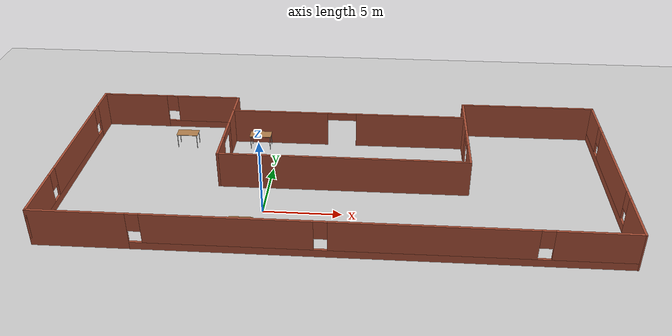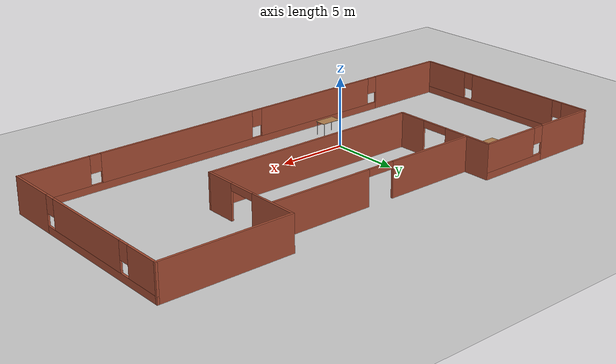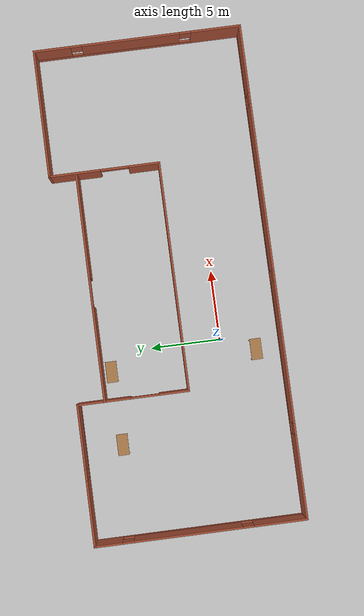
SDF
<sdf version="1.6">
 <world name="default">
  <light name="sun" type="directional">
   <pose>0 0 10 0 -0 0</pose>
   <diffuse>0.8 0.8 0.8 1</diffuse>
   <specular>0.2 0.2 0.2 1</specular>
   <attenuation>
    <range>1000</range>
    <constant>0.9</constant>
    <linear>0.01</linear>
    <quadratic>0.001</quadratic>
   </attenuation>
   <direction>-0.5 0.1 -0.9</direction>
  </light>
  <model name="ground_plane">
   <static>1</static>
   <link name="link">
    <collision name="collision">
     <geometry><plane><normal>0 0 1</normal><size>100 100</size></plane></geometry>
     <surface>
      <contact><collide_bitmask>65535</collide_bitmask></contact>
      <friction><ode><mu>100</mu><mu2>50</mu2></ode></friction>
     </surface>
    </collision>
    <visual name="visual">
     <cast_shadows>0</cast_shadows>
     <geometry><plane><normal>0 0 1</normal><size>100 100</size></plane></geometry>
     <material>
      <script><uri>file://media/materials/scripts/gazebo.material</uri><name>Gazebo/Grey</name></script>
     </material>
    </visual>
   </link>
  </model>
  <gravity>0 0 -9.8</gravity>
  <magnetic_field>6e-06 2.3e-05 -4.2e-05</magnetic_field>
  <atmosphere type="adiabatic"/>
  <physics name="default_physics" default="0" type="ode">
   <max_step_size>0.001</max_step_size>
   <real_time_factor>1</real_time_factor>
   <real_time_update_rate>1000</real_time_update_rate>
  </physics>
  <scene><ambient>0.4 0.4 0.4 1</ambient><background>0.7 0.7 0.7 1</background><shadows>1</shadows></scene>
  <audio><device>default</device></audio>
  <spherical_coordinates>
   <surface_model>EARTH_WGS84</surface_model>
   <latitude_deg>0</latitude_deg>
   <longitude_deg>0</longitude_deg>
   <elevation>0</elevation>
   <heading_deg>0</heading_deg>
  </spherical_coordinates>
  <model name="modbot_world">
   <pose>4.48637 3.18277 0 0 -0 0</pose>
   <link name="Wall_10">
    <collision name="Wall_10_Collision">
     <geometry><box><size>9.25 0.15 2.5</size></box></geometry>
     <pose>0 0 1.25 0 -0 0</pose>
    </collision>
    <visual name="Wall_10_Visual">
     <pose>0 0 1.25 0 -0 0</pose>
     <geometry><box><size>9.25 0.15 2.5</size></box></geometry>
     <material>
      <script><uri>file://media/materials/scripts/gazebo.material</uri><name>Gazebo/Bricks</name></script>
      <ambient>0.560784 0.34902 0.00784314 1</ambient>
     </material>
     <meta><layer>0</layer></meta>
    </visual>
    <pose>13.05 7.425 0 0 -0 3.14159</pose>
   </link>
   <link name="Wall_11">
    <pose>8.5 3.5 0 0 -0 -1.5708</pose>
    <visual name="Wall_11_Visual_0">
     <pose>-2.13406 0 1.25 0 -0 0</pose>
     <geometry><box><size>3.73188 0.15 2.5</size></box></geometry>
     <material>
      <script><uri>file://media/materials/scripts/gazebo.material</uri><name>Gazebo/Bricks</name></script>
      <ambient>0.643137 0 0 1</ambient>
     </material>
     <meta><layer>0</layer></meta>
    </visual>
    <collision name="Wall_11_Collision_0">
     <geometry><box><size>3.73188 0.15 2.5</size></box></geometry>
     <pose>-2.13406 0 1.25 0 -0 0</pose>
    </collision>
    <visual name="Wall_11_Visual_1">
     <pose>2.86594 0 1.25 0 -0 0</pose>
     <geometry><box><size>2.26812 0.15 2.5</size></box></geometry>
     <material>
      <script><uri>file://media/materials/scripts/gazebo.material</uri><name>Gazebo/Bricks</name></script>
      <ambient>0.643137 0 0 1</ambient>
     </material>
     <meta><layer>0</layer></meta>
    </visual>
    <collision name="Wall_11_Collision_1">
     <geometry><box><size>2.26812 0.15 2.5</size></box></geometry>
     <pose>2.86594 0 1.25 0 -0 0</pose>
    </collision>
    <visual name="Wall_11_Visual_2">
     <pose>0.731881 0 2.25 0 -0 0</pose>
     <geometry><box><size>2 0.15 0.5</size></box></geometry>
     <material>
      <script><uri>file://media/materials/scripts/gazebo.material</uri><name>Gazebo/Bricks</name></script>
      <ambient>0.643137 0 0 1</ambient>
     </material>
     <meta><layer>0</layer></meta>
    </visual>
    <collision name="Wall_11_Collision_2">
     <geometry><box><size>2 0.15 0.5</size></box></geometry>
     <pose>0.731881 0 2.25 0 -0 0</pose>
    </collision>
   </link>
   <link name="Wall_12">
    <collision name="Wall_12_Collision">
     <geometry><box><size>16.25 0.15 2.5</size></box></geometry>
     <pose>0 0 1.25 0 -0 0</pose>
    </collision>
    <visual name="Wall_12_Visual">
     <pose>0 0 1.25 0 -0 0</pose>
     <geometry><box><size>16.25 0.15 2.5</size></box></geometry>
     <material>
      <script><uri>file://media/materials/scripts/gazebo.material</uri><name>Gazebo/Bricks</name></script>
      <ambient>0.643137 0 0 1</ambient>
     </material>
     <meta><layer>0</layer></meta>
    </visual>
    <pose>0.449998 -0.425 0 0 -0 3.14159</pose>
   </link>
   <link name="Wall_15">
    <pose>-7.75 3.5 0 0 -0 -1.5708</pose>
    <visual name="Wall_15_Visual_0">
     <pose>-2.09194 0 1.25 0 -0 0</pose>
     <geometry><box><size>3.81611 0.15 2.5</size></box></geometry>
     <material>
      <script><uri>file://media/materials/scripts/gazebo.material</uri><name>Gazebo/Bricks</name></script>
      <ambient>0.643137 0 0 1</ambient>
     </material>
     <meta><layer>0</layer></meta>
    </visual>
    <collision name="Wall_15_Collision_0">
     <geometry><box><size>3.81611 0.15 2.5</size></box></geometry>
     <pose>-2.09194 0 1.25 0 -0 0</pose>
    </collision>
    <visual name="Wall_15_Visual_1">
     <pose>2.90806 0 1.25 0 -0 0</pose>
     <geometry><box><size>2.18389 0.15 2.5</size></box></geometry>
     <material>
      <script><uri>file://media/materials/scripts/gazebo.material</uri><name>Gazebo/Bricks</name></script>
      <ambient>0.643137 0 0 1</ambient>
     </material>
     <meta><layer>0</layer></meta>
    </visual>
    <collision name="Wall_15_Collision_1">
     <geometry><box><size>2.18389 0.15 2.5</size></box></geometry>
     <pose>2.90806 0 1.25 0 -0 0</pose>
    </collision>
    <visual name="Wall_15_Visual_2">
     <pose>0.816113 0 2.25 0 -0 0</pose>
     <geometry><box><size>2 0.15 0.5</size></box></geometry>
     <material>
      <script><uri>file://media/materials/scripts/gazebo.material</uri><name>Gazebo/Bricks</name></script>
      <ambient>0.643137 0 0 1</ambient>
     </material>
     <meta><layer>0</layer></meta>
    </visual>
    <collision name="Wall_15_Collision_2">
     <geometry><box><size>2 0.15 0.5</size></box></geometry>
     <pose>0.816113 0 2.25 0 -0 0</pose>
    </collision>
   </link>
   <link name="Wall_17">
    <pose>0.296212 5.51215 0 0 -0 0</pose>
    <visual name="Wall_17_Visual_0">
     <pose>-4.73722 0 1.25 0 -0 0</pose>
     <geometry><box><size>6.77557 0.15 2.5</size></box></geometry>
     <material>
      <script><uri>file://media/materials/scripts/gazebo.material</uri><name>Gazebo/Bricks</name></script>
      <ambient>0.643137 0 0 1</ambient>
     </material>
     <meta><layer>0</layer></meta>
    </visual>
    <collision name="Wall_17_Collision_0">
     <geometry><box><size>6.77557 0.15 2.5</size></box></geometry>
     <pose>-4.73722 0 1.25 0 -0 0</pose>
    </collision>
    <visual name="Wall_17_Visual_1">
     <pose>4.38778 0 1.25 0 -0 0</pose>
     <geometry><box><size>7.47443 0.15 2.5</size></box></geometry>
     <material>
      <script><uri>file://media/materials/scripts/gazebo.material</uri><name>Gazebo/Bricks</name></script>
      <ambient>0.643137 0 0 1</ambient>
     </material>
     <meta><layer>0</layer></meta>
    </visual>
    <collision name="Wall_17_Collision_1">
     <geometry><box><size>7.47443 0.15 2.5</size></box></geometry>
     <pose>4.38778 0 1.25 0 -0 0</pose>
    </collision>
    <visual name="Wall_17_Visual_2">
     <pose>-0.349432 0 2.25 0 -0 0</pose>
     <geometry><box><size>2 0.15 0.5</size></box></geometry>
     <material>
      <script><uri>file://media/materials/scripts/gazebo.material</uri><name>Gazebo/Bricks</name></script>
      <ambient>0.643137 0 0 1</ambient>
     </material>
     <meta><layer>0</layer></meta>
    </visual>
    <collision name="Wall_17_Collision_2">
     <geometry><box><size>2 0.15 0.5</size></box></geometry>
     <pose>-0.349432 0 2.25 0 -0 0</pose>
    </collision>
   </link>
   <link name="Wall_19">
    <pose>-0.050002 -7.425 0 0 -0 0</pose>
    <visual name="Wall_19_Visual_0">
     <pose>-14.6567 0 1.25 0 -0 0</pose>
     <geometry><box><size>5.93655 0.15 2.5</size></box></geometry>
     <material>
      <script><uri>file://media/materials/scripts/gazebo.material</uri><name>Gazebo/Bricks</name></script>
      <ambient>0.560784 0.34902 0.00784314 1</ambient>
     </material>
     <meta><layer>0</layer></meta>
    </visual>
    <collision name="Wall_19_Collision_0">
     <geometry><box><size>5.93655 0.15 2.5</size></box></geometry>
     <pose>-14.6567 0 1.25 0 -0 0</pose>
    </collision>
    <visual name="Wall_19_Visual_1">
     <pose>2.96827 0 0.25 0 -0 0</pose>
     <geometry><box><size>29.3135 0.15 0.5</size></box></geometry>
     <material>
      <script><uri>file://media/materials/scripts/gazebo.material</uri><name>Gazebo/Bricks</name></script>
      <ambient>0.560784 0.34902 0.00784314 1</ambient>
     </material>
     <meta><layer>0</layer></meta>
    </visual>
    <collision name="Wall_19_Collision_1">
     <geometry><box><size>29.3135 0.15 0.5</size></box></geometry>
     <pose>2.96827 0 0.25 0 -0 0</pose>
    </collision>
    <visual name="Wall_19_Visual_2">
     <pose>-5.85795 0 1.5 0 -0 0</pose>
     <geometry><box><size>10.061 0.15 2</size></box></geometry>
     <material>
      <script><uri>file://media/materials/scripts/gazebo.material</uri><name>Gazebo/Bricks</name></script>
      <ambient>0.560784 0.34902 0.00784314 1</ambient>
     </material>
     <meta><layer>0</layer></meta>
    </visual>
    <collision name="Wall_19_Collision_2">
     <geometry><box><size>10.061 0.15 2</size></box></geometry>
     <pose>-5.85795 0 1.5 0 -0 0</pose>
    </collision>
    <visual name="Wall_19_Visual_3">
     <pose>5.9661 0 1.5 0 -0 0</pose>
     <geometry><box><size>11.9871 0.15 2</size></box></geometry>
     <material>
      <script><uri>file://media/materials/scripts/gazebo.material</uri><name>Gazebo/Bricks</name></script>
      <ambient>0.560784 0.34902 0.00784314 1</ambient>
     </material>
     <meta><layer>0</layer></meta>
    </visual>
    <collision name="Wall_19_Collision_3">
     <geometry><box><size>11.9871 0.15 2</size></box></geometry>
     <pose>5.9661 0 1.5 0 -0 0</pose>
    </collision>
    <visual name="Wall_19_Visual_4">
     <pose>15.1923 0 1.5 0 -0 0</pose>
     <geometry><box><size>4.86535 0.15 2</size></box></geometry>
     <material>
      <script><uri>file://media/materials/scripts/gazebo.material</uri><name>Gazebo/Bricks</name></script>
      <ambient>0.560784 0.34902 0.00784314 1</ambient>
     </material>
     <meta><layer>0</layer></meta>
    </visual>
    <collision name="Wall_19_Collision_4">
     <geometry><box><size>4.86535 0.15 2</size></box></geometry>
     <pose>15.1923 0 1.5 0 -0 0</pose>
    </collision>
    <visual name="Wall_19_Visual_5">
     <pose>-11.2885 0 1.9 0 -0 0</pose>
     <geometry><box><size>0.8 0.15 1.2</size></box></geometry>
     <material>
      <script><uri>file://media/materials/scripts/gazebo.material</uri><name>Gazebo/Bricks</name></script>
      <ambient>0.560784 0.34902 0.00784314 1</ambient>
     </material>
     <meta><layer>0</layer></meta>
    </visual>
    <collision name="Wall_19_Collision_5">
     <geometry><box><size>0.8 0.15 1.2</size></box></geometry>
     <pose>-11.2885 0 1.9 0 -0 0</pose>
    </collision>
    <visual name="Wall_19_Visual_6">
     <pose>-0.427446 0 1.9 0 -0 0</pose>
     <geometry><box><size>0.8 0.15 1.2</size></box></geometry>
     <material>
      <script><uri>file://media/materials/scripts/gazebo.material</uri><name>Gazebo/Bricks</name></script>
      <ambient>0.560784 0.34902 0.00784314 1</ambient>
     </material>
     <meta><layer>0</layer></meta>
    </visual>
    <collision name="Wall_19_Collision_6">
     <geometry><box><size>0.8 0.15 1.2</size></box></geometry>
     <pose>-0.427446 0 1.9 0 -0 0</pose>
    </collision>
    <visual name="Wall_19_Visual_7">
     <pose>12.3597 0 1.9 0 -0 0</pose>
     <geometry><box><size>0.8 0.15 1.2</size></box></geometry>
     <material>
      <script><uri>file://media/materials/scripts/gazebo.material</uri><name>Gazebo/Bricks</name></script>
      <ambient>0.560784 0.34902 0.00784314 1</ambient>
     </material>
     <meta><layer>0</layer></meta>
    </visual>
    <collision name="Wall_19_Collision_7">
     <geometry><box><size>0.8 0.15 1.2</size></box></geometry>
     <pose>12.3597 0 1.9 0 -0 0</pose>
    </collision>
   </link>
   <link name="Wall_3">
    <pose>-17.6 0 0 0 -0 -1.5708</pose>
    <visual name="Wall_3_Visual_0">
     <pose>-6.49207 0 1.25 0 -0 0</pose>
     <geometry><box><size>2.01587 0.15 2.5</size></box></geometry>
     <material>
      <script><uri>file://media/materials/scripts/gazebo.material</uri><name>Gazebo/Bricks</name></script>
      <ambient>0.560784 0.34902 0.00784314 1</ambient>
     </material>
     <meta><layer>0</layer></meta>
    </visual>
    <collision name="Wall_3_Collision_0">
     <geometry><box><size>2.01587 0.15 2.5</size></box></geometry>
     <pose>-6.49207 0 1.25 0 -0 0</pose>
    </collision>
    <visual name="Wall_3_Visual_1">
     <pose>1.00794 0 0.25 0 -0 0</pose>
     <geometry><box><size>12.9841 0.15 0.5</size></box></geometry>
     <material>
      <script><uri>file://media/materials/scripts/gazebo.material</uri><name>Gazebo/Bricks</name></script>
      <ambient>0.560784 0.34902 0.00784314 1</ambient>
     </material>
     <meta><layer>0</layer></meta>
    </visual>
    <collision name="Wall_3_Collision_1">
     <geometry><box><size>12.9841 0.15 0.5</size></box></geometry>
     <pose>1.00794 0 0.25 0 -0 0</pose>
    </collision>
    <visual name="Wall_3_Visual_2">
     <pose>-0.884183 0 1.5 0 -0 0</pose>
     <geometry><box><size>7.59989 0.15 2</size></box></geometry>
     <material>
      <script><uri>file://media/materials/scripts/gazebo.material</uri><name>Gazebo/Bricks</name></script>
      <ambient>0.560784 0.34902 0.00784314 1</ambient>
     </material>
     <meta><layer>0</layer></meta>
    </visual>
    <collision name="Wall_3_Collision_2">
     <geometry><box><size>7.59989 0.15 2</size></box></geometry>
     <pose>-0.884183 0 1.5 0 -0 0</pose>
    </collision>
    <visual name="Wall_3_Visual_3">
     <pose>5.60788 0 1.5 0 -0 0</pose>
     <geometry><box><size>3.78424 0.15 2</size></box></geometry>
     <material>
      <script><uri>file://media/materials/scripts/gazebo.material</uri><name>Gazebo/Bricks</name></script>
      <ambient>0.560784 0.34902 0.00784314 1</ambient>
     </material>
     <meta><layer>0</layer></meta>
    </visual>
    <collision name="Wall_3_Collision_3">
     <geometry><box><size>3.78424 0.15 2</size></box></geometry>
     <pose>5.60788 0 1.5 0 -0 0</pose>
    </collision>
    <visual name="Wall_3_Visual_4">
     <pose>-5.08413 0 1.9 0 -0 0</pose>
     <geometry><box><size>0.8 0.15 1.2</size></box></geometry>
     <material>
      <script><uri>file://media/materials/scripts/gazebo.material</uri><name>Gazebo/Bricks</name></script>
      <ambient>0.560784 0.34902 0.00784314 1</ambient>
     </material>
     <meta><layer>0</layer></meta>
    </visual>
    <collision name="Wall_3_Collision_4">
     <geometry><box><size>0.8 0.15 1.2</size></box></geometry>
     <pose>-5.08413 0 1.9 0 -0 0</pose>
    </collision>
    <visual name="Wall_3_Visual_5">
     <pose>3.31576 0 1.9 0 -0 0</pose>
     <geometry><box><size>0.8 0.15 1.2</size></box></geometry>
     <material>
      <script><uri>file://media/materials/scripts/gazebo.material</uri><name>Gazebo/Bricks</name></script>
      <ambient>0.560784 0.34902 0.00784314 1</ambient>
     </material>
     <meta><layer>0</layer></meta>
    </visual>
    <collision name="Wall_3_Collision_5">
     <geometry><box><size>0.8 0.15 1.2</size></box></geometry>
     <pose>3.31576 0 1.9 0 -0 0</pose>
    </collision>
   </link>
   <link name="Wall_5">
    <pose>-12.675 7.425 0 0 -0 0</pose>
    <visual name="Wall_5_Visual_0">
     <pose>-2.67376 0 1.25 0 -0 0</pose>
     <geometry><box><size>4.65249 0.15 2.5</size></box></geometry>
     <material>
      <script><uri>file://media/materials/scripts/gazebo.material</uri><name>Gazebo/Bricks</name></script>
      <ambient>0.560784 0.34902 0.00784314 1</ambient>
     </material>
     <meta><layer>0</layer></meta>
    </visual>
    <collision name="Wall_5_Collision_0">
     <geometry><box><size>4.65249 0.15 2.5</size></box></geometry>
     <pose>-2.67376 0 1.25 0 -0 0</pose>
    </collision>
    <visual name="Wall_5_Visual_1">
     <pose>2.32624 0 0.25 0 -0 0</pose>
     <geometry><box><size>5.34751 0.15 0.5</size></box></geometry>
     <material>
      <script><uri>file://media/materials/scripts/gazebo.material</uri><name>Gazebo/Bricks</name></script>
      <ambient>0.560784 0.34902 0.00784314 1</ambient>
     </material>
     <meta><layer>0</layer></meta>
    </visual>
    <collision name="Wall_5_Collision_1">
     <geometry><box><size>5.34751 0.15 0.5</size></box></geometry>
     <pose>2.32624 0 0.25 0 -0 0</pose>
    </collision>
    <visual name="Wall_5_Visual_2">
     <pose>2.72624 0 1.5 0 -0 0</pose>
     <geometry><box><size>4.54751 0.15 2</size></box></geometry>
     <material>
      <script><uri>file://media/materials/scripts/gazebo.material</uri><name>Gazebo/Bricks</name></script>
      <ambient>0.560784 0.34902 0.00784314 1</ambient>
     </material>
     <meta><layer>0</layer></meta>
    </visual>
    <collision name="Wall_5_Collision_2">
     <geometry><box><size>4.54751 0.15 2</size></box></geometry>
     <pose>2.72624 0 1.5 0 -0 0</pose>
    </collision>
    <visual name="Wall_5_Visual_3">
     <pose>0.052486 0 1.9 0 -0 0</pose>
     <geometry><box><size>0.8 0.15 1.2</size></box></geometry>
     <material>
      <script><uri>file://media/materials/scripts/gazebo.material</uri><name>Gazebo/Bricks</name></script>
      <ambient>0.560784 0.34902 0.00784314 1</ambient>
     </material>
     <meta><layer>0</layer></meta>
    </visual>
    <collision name="Wall_5_Collision_3">
     <geometry><box><size>0.8 0.15 1.2</size></box></geometry>
     <pose>0.052486 0 1.9 0 -0 0</pose>
    </collision>
   </link>
   <link name="Wall_9">
    <pose>17.6 0 0 0 -0 1.5708</pose>
    <visual name="Wall_9_Visual_0">
     <pose>-5.68813 0 1.25 0 -0 0</pose>
     <geometry><box><size>3.62373 0.15 2.5</size></box></geometry>
     <material>
      <script><uri>file://media/materials/scripts/gazebo.material</uri><name>Gazebo/Bricks</name></script>
      <ambient>0.560784 0.34902 0.00784314 1</ambient>
     </material>
     <meta><layer>0</layer></meta>
    </visual>
    <collision name="Wall_9_Collision_0">
     <geometry><box><size>3.62373 0.15 2.5</size></box></geometry>
     <pose>-5.68813 0 1.25 0 -0 0</pose>
    </collision>
    <visual name="Wall_9_Visual_1">
     <pose>1.81187 0 0.25 0 -0 0</pose>
     <geometry><box><size>11.3763 0.15 0.5</size></box></geometry>
     <material>
      <script><uri>file://media/materials/scripts/gazebo.material</uri><name>Gazebo/Bricks</name></script>
      <ambient>0.560784 0.34902 0.00784314 1</ambient>
     </material>
     <meta><layer>0</layer></meta>
    </visual>
    <collision name="Wall_9_Collision_1">
     <geometry><box><size>11.3763 0.15 0.5</size></box></geometry>
     <pose>1.81187 0 0.25 0 -0 0</pose>
    </collision>
    <visual name="Wall_9_Visual_2">
     <pose>0.464501 0 1.5 0 -0 0</pose>
     <geometry><box><size>7.08154 0.15 2</size></box></geometry>
     <material>
      <script><uri>file://media/materials/scripts/gazebo.material</uri><name>Gazebo/Bricks</name></script>
      <ambient>0.560784 0.34902 0.00784314 1</ambient>
     </material>
     <meta><layer>0</layer></meta>
    </visual>
    <collision name="Wall_9_Collision_2">
     <geometry><box><size>7.08154 0.15 2</size></box></geometry>
     <pose>0.464501 0 1.5 0 -0 0</pose>
    </collision>
    <visual name="Wall_9_Visual_3">
     <pose>6.15264 0 1.5 0 -0 0</pose>
     <geometry><box><size>2.69473 0.15 2</size></box></geometry>
     <material>
      <script><uri>file://media/materials/scripts/gazebo.material</uri><name>Gazebo/Bricks</name></script>
      <ambient>0.560784 0.34902 0.00784314 1</ambient>
     </material>
     <meta><layer>0</layer></meta>
    </visual>
    <collision name="Wall_9_Collision_3">
     <geometry><box><size>2.69473 0.15 2</size></box></geometry>
     <pose>6.15264 0 1.5 0 -0 0</pose>
    </collision>
    <visual name="Wall_9_Visual_4">
     <pose>-3.47627 0 1.9 0 -0 0</pose>
     <geometry><box><size>0.8 0.15 1.2</size></box></geometry>
     <material>
      <script><uri>file://media/materials/scripts/gazebo.material</uri><name>Gazebo/Bricks</name></script>
      <ambient>0.560784 0.34902 0.00784314 1</ambient>
     </material>
     <meta><layer>0</layer></meta>
    </visual>
    <collision name="Wall_9_Collision_4">
     <geometry><box><size>0.8 0.15 1.2</size></box></geometry>
     <pose>-3.47627 0 1.9 0 -0 0</pose>
    </collision>
    <visual name="Wall_9_Visual_5">
     <pose>4.40527 0 1.9 0 -0 0</pose>
     <geometry><box><size>0.8 0.15 1.2</size></box></geometry>
     <material>
      <script><uri>file://media/materials/scripts/gazebo.material</uri><name>Gazebo/Bricks</name></script>
      <ambient>0.560784 0.34902 0.00784314 1</ambient>
     </material>
     <meta><layer>0</layer></meta>
    </visual>
    <collision name="Wall_9_Collision_5">
     <geometry><box><size>0.8 0.15 1.2</size></box></geometry>
     <pose>4.40527 0 1.9 0 -0 0</pose>
    </collision>
   </link>
   <static>1</static>
  </model>
  <model name="table_2">
   <static>1</static>
   <link name="link">
    <collision name="surface">
     <pose>0 0 1 0 -0 0</pose>
     <geometry><box><size>1.5 0.8 0.03</size></box></geometry>
     <surface><friction><ode><mu>0.6</mu><mu2>0.6</mu2></ode></friction></surface>
    </collision>
    <visual name="visual1">
     <pose>0 0 1 0 -0 0</pose>
     <geometry><box><size>1.5 0.8 0.03</size></box></geometry>
     <material>
      <script><uri>file://media/materials/scripts/gazebo.material</uri><name>Gazebo/Wood</name></script>
     </material>
    </visual>
    <collision name="front_left_leg">
     <pose>0.68 0.38 0.5 0 -0 0</pose>
     <geometry><cylinder><radius>0.02</radius><length>1</length></cylinder></geometry>
    </collision>
    <visual name="front_left_leg">
     <pose>0.68 0.38 0.5 0 -0 0</pose>
     <geometry><cylinder><radius>0.02</radius><length>1</length></cylinder></geometry>
     <material>
      <script><uri>file://media/materials/scripts/gazebo.material</uri><name>Gazebo/Grey</name></script>
     </material>
    </visual>
    <collision name="front_right_leg">
     <pose>0.68 -0.38 0.5 0 -0 0</pose>
     <geometry><cylinder><radius>0.02</radius><length>1</length></cylinder></geometry>
    </collision>
    <visual name="front_right_leg">
     <pose>0.68 -0.38 0.5 0 -0 0</pose>
     <geometry><cylinder><radius>0.02</radius><length>1</length></cylinder></geometry>
     <material>
      <script><uri>file://media/materials/scripts/gazebo.material</uri><name>Gazebo/Grey</name></script>
     </material>
    </visual>
    <collision name="back_right_leg">
     <pose>-0.68 -0.38 0.5 0 -0 0</pose>
     <geometry><cylinder><radius>0.02</radius><length>1</length></cylinder></geometry>
    </collision>
    <visual name="back_right_leg">
     <pose>-0.68 -0.38 0.5 0 -0 0</pose>
     <geometry><cylinder><radius>0.02</radius><length>1</length></cylinder></geometry>
     <material>
      <script><uri>file://media/materials/scripts/gazebo.material</uri><name>Gazebo/Grey</name></script>
     </material>
    </visual>
    <collision name="back_left_leg">
     <pose>-0.68 0.38 0.5 0 -0 0</pose>
     <geometry><cylinder><radius>0.02</radius><length>1</length></cylinder></geometry>
    </collision>
    <visual name="back_left_leg">
     <pose>-0.68 0.38 0.5 0 -0 0</pose>
     <geometry><cylinder><radius>0.02</radius><length>1</length></cylinder></geometry>
     <material>
      <script><uri>file://media/materials/scripts/gazebo.material</uri><name>Gazebo/Grey</name></script>
     </material>
    </visual>
   </link>
   <pose>-6.49708 7.8803 0 0 -0 0</pose>
  </model>
  <model name="table_3">
   <static>1</static>
   <link name="link">
    <collision name="surface">
     <pose>0 0 1 0 -0 0</pose>
     <geometry><box><size>1.5 0.8 0.03</size></box></geometry>
     <surface><friction><ode><mu>0.6</mu><mu2>0.6</mu2></ode></friction></surface>
    </collision>
    <visual name="visual1">
     <pose>0 0 1 0 -0 0</pose>
     <geometry><box><size>1.5 0.8 0.03</size></box></geometry>
     <material>
      <script><uri>file://media/materials/scripts/gazebo.material</uri><name>Gazebo/Wood</name></script>
     </material>
    </visual>
    <collision name="front_left_leg">
     <pose>0.68 0.38 0.5 0 -0 0</pose>
     <geometry><cylinder><radius>0.02</radius><length>1</length></cylinder></geometry>
    </collision>
    <visual name="front_left_leg">
     <pose>0.68 0.38 0.5 0 -0 0</pose>
     <geometry><cylinder><radius>0.02</radius><length>1</length></cylinder></geometry>
     <material>
      <script><uri>file://media/materials/scripts/gazebo.material</uri><name>Gazebo/Grey</name></script>
     </material>
    </visual>
    <collision name="front_right_leg">
     <pose>0.68 -0.38 0.5 0 -0 0</pose>
     <geometry><cylinder><radius>0.02</radius><length>1</length></cylinder></geometry>
    </collision>
    <visual name="front_right_leg">
     <pose>0.68 -0.38 0.5 0 -0 0</pose>
     <geometry><cylinder><radius>0.02</radius><length>1</length></cylinder></geometry>
     <material>
      <script><uri>file://media/materials/scripts/gazebo.material</uri><name>Gazebo/Grey</name></script>
     </material>
    </visual>
    <collision name="back_right_leg">
     <pose>-0.68 -0.38 0.5 0 -0 0</pose>
     <geometry><cylinder><radius>0.02</radius><length>1</length></cylinder></geometry>
    </collision>
    <visual name="back_right_leg">
     <pose>-0.68 -0.38 0.5 0 -0 0</pose>
     <geometry><cylinder><radius>0.02</radius><length>1</length></cylinder></geometry>
     <material>
      <script><uri>file://media/materials/scripts/gazebo.material</uri><name>Gazebo/Grey</name></script>
     </material>
    </visual>
    <collision name="back_left_leg">
     <pose>-0.68 0.38 0.5 0 -0 0</pose>
     <geometry><cylinder><radius>0.02</radius><length>1</length></cylinder></geometry>
    </collision>
    <visual name="back_left_leg">
     <pose>-0.68 0.38 0.5 0 -0 0</pose>
     <geometry><cylinder><radius>0.02</radius><length>1</length></cylinder></geometry>
     <material>
      <script><uri>file://media/materials/scripts/gazebo.material</uri><name>Gazebo/Grey</name></script>
     </material>
    </visual>
   </link>
   <pose>-1.29076 8.02433 0 0 -0 0</pose>
  </model>
  <model name="table_5">
   <static>1</static>
   <link name="link">
    <collision name="surface">
     <pose>0 0 1 0 -0 0</pose>
     <geometry><box><size>1.5 0.8 0.03</size></box></geometry>
     <surface><friction><ode><mu>0.6</mu><mu2>0.6</mu2></ode></friction></surface>
    </collision>
    <visual name="visual1">
     <pose>0 0 1 0 -0 0</pose>
     <geometry><box><size>1.5 0.8 0.03</size></box></geometry>
     <material>
      <script><uri>file://media/materials/scripts/gazebo.material</uri><name>Gazebo/Wood</name></script>
     </material>
    </visual>
    <collision name="front_left_leg">
     <pose>0.68 0.38 0.5 0 -0 0</pose>
     <geometry><cylinder><radius>0.02</radius><length>1</length></cylinder></geometry>
    </collision>
    <visual name="front_left_leg">
     <pose>0.68 0.38 0.5 0 -0 0</pose>
     <geometry><cylinder><radius>0.02</radius><length>1</length></cylinder></geometry>
     <material>
      <script><uri>file://media/materials/scripts/gazebo.material</uri><name>Gazebo/Grey</name></script>
     </material>
    </visual>
    <collision name="front_right_leg">
     <pose>0.68 -0.38 0.5 0 -0 0</pose>
     <geometry><cylinder><radius>0.02</radius><length>1</length></cylinder></geometry>
    </collision>
    <visual name="front_right_leg">
     <pose>0.68 -0.38 0.5 0 -0 0</pose>
     <geometry><cylinder><radius>0.02</radius><length>1</length></cylinder></geometry>
     <material>
      <script><uri>file://media/materials/scripts/gazebo.material</uri><name>Gazebo/Grey</name></script>
     </material>
    </visual>
    <collision name="back_right_leg">
     <pose>-0.68 -0.38 0.5 0 -0 0</pose>
     <geometry><cylinder><radius>0.02</radius><length>1</length></cylinder></geometry>
    </collision>
    <visual name="back_right_leg">
     <pose>-0.68 -0.38 0.5 0 -0 0</pose>
     <geometry><cylinder><radius>0.02</radius><length>1</length></cylinder></geometry>
     <material>
      <script><uri>file://media/materials/scripts/gazebo.material</uri><name>Gazebo/Grey</name></script>
     </material>
    </visual>
    <collision name="back_left_leg">
     <pose>-0.68 0.38 0.5 0 -0 0</pose>
     <geometry><cylinder><radius>0.02</radius><length>1</length></cylinder></geometry>
    </collision>
    <visual name="back_left_leg">
     <pose>-0.68 0.38 0.5 0 -0 0</pose>
     <geometry><cylinder><radius>0.02</radius><length>1</length></cylinder></geometry>
     <material>
      <script><uri>file://media/materials/scripts/gazebo.material</uri><name>Gazebo/Grey</name></script>
     </material>
    </visual>
   </link>
   <pose>-0.982602 -2.42253 0 0 -0 0</pose>
  </model>
 </world>
</sdf>
